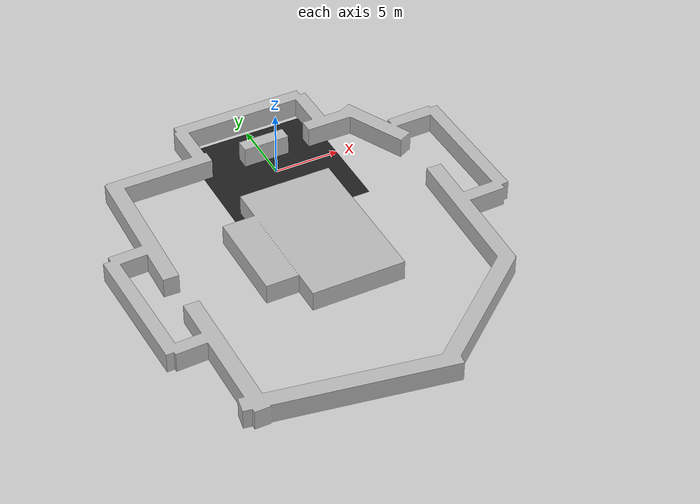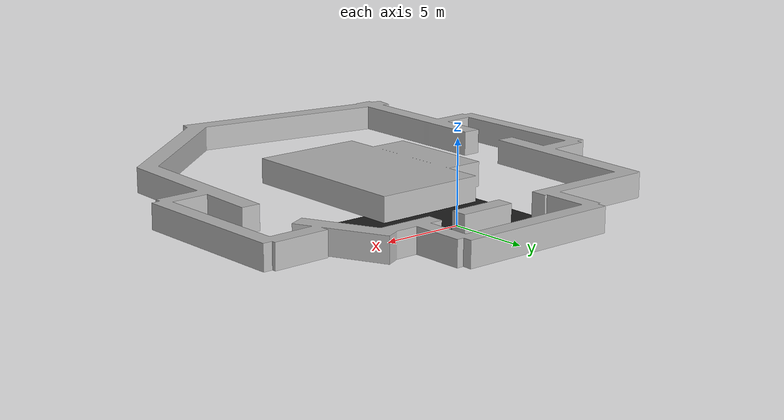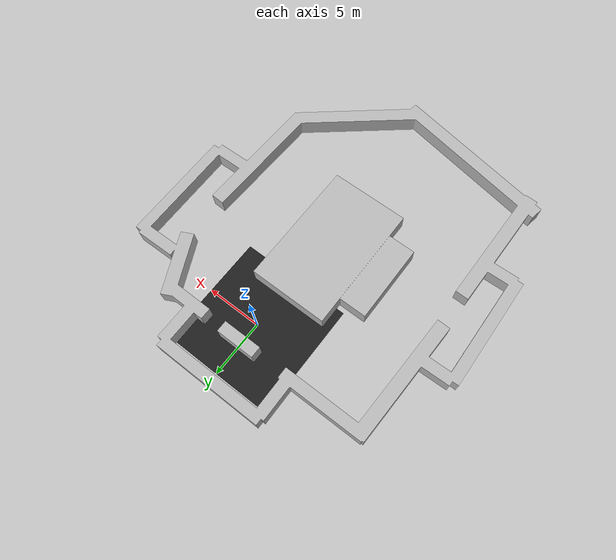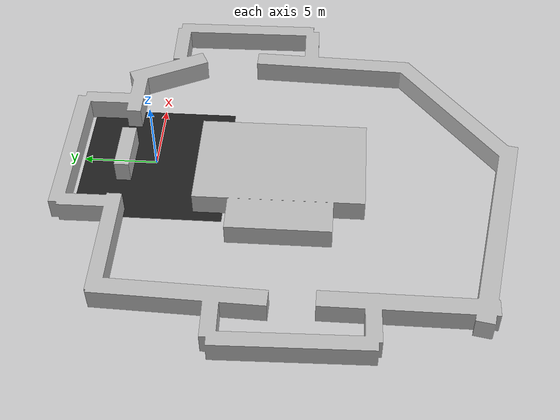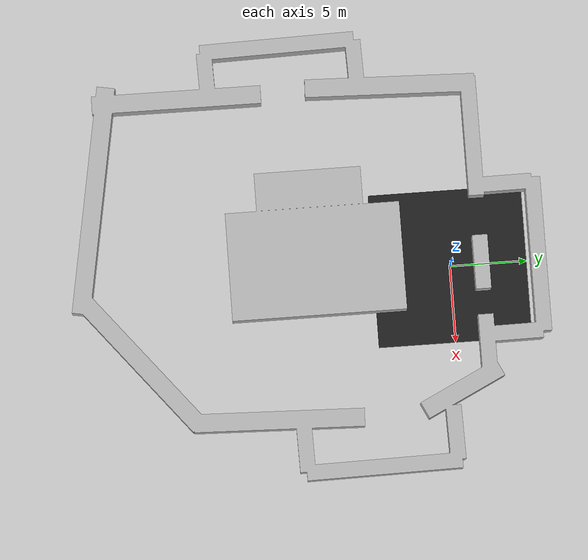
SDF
<sdf version="1.6">
 <world name="default">
  <scene>
   <ambient>0 0 0 1</ambient>
   <shadows>0</shadows>
   <grid>0</grid>
   <background>0.7 0.7 0.7 1</background>
  </scene>
  <include><uri>model://test_map</uri><pose>0 0 0 0 0 -3.14</pose></include>
  <light name="sun" type="directional">
   <pose>0 0 10 0 -0 0</pose>
   <diffuse>0.8 0.8 0.8 1</diffuse>
   <specular>0.1 0.1 0.1 1</specular>
   <attenuation>
    <range>1000</range>
    <constant>0.9</constant>
    <linear>0.01</linear>
    <quadratic>0.001</quadratic>
   </attenuation>
   <direction>-0.5 0.5 -1</direction>
  </light>
  <model name="ground2">
   <pose>0 0 -0.1 0 -0 0</pose>
   <static>1</static>
   <link name="ground">
    <collision name="ground_coll"><geometry><box><size>8 8 0.01</size></box></geometry></collision>
    <visual name="ground_vis">
     <geometry><box><size>10 10 0.01</size></box></geometry>
     <material>
      <script><uri>file://media/materials/scripts/gazebo.material</uri><name>Gazebo/FlatBlack</name></script>
     </material>
    </visual>
   </link>
  </model>
  <physics type="ode">
   <max_step_size>0.01</max_step_size>
   <real_time_factor>1</real_time_factor>
   <real_time_update_rate>100</real_time_update_rate>
  </physics>
  <spherical_coordinates>
   <surface_model>EARTH_WGS84</surface_model>
   <latitude_deg>0</latitude_deg>
   <longitude_deg>0</longitude_deg>
   <elevation>0</elevation>
   <heading_deg>0</heading_deg>
  </spherical_coordinates>
  <light name="user_point_light_1" type="point">
   <pose>-1.648146 0.604519 1 0 -0 0</pose>
   <diffuse>0.5 0.5 0.5 1</diffuse>
   <specular>0.1 0.1 0.1 1</specular>
   <attenuation>
    <range>20</range>
    <constant>0.5</constant>
    <linear>0.01</linear>
    <quadratic>0.001</quadratic>
   </attenuation>
   <cast_shadows>0</cast_shadows>
   <direction>0 0 -1</direction>
  </light>
  <light name="user_point_light_2" type="point">
   <pose>1.63854 1.69565 1 0 -0 0</pose>
   <diffuse>0.5 0.5 0.5 1</diffuse>
   <specular>0.1 0.1 0.1 1</specular>
   <attenuation>
    <range>20</range>
    <constant>0.5</constant>
    <linear>0.01</linear>
    <quadratic>0.001</quadratic>
   </attenuation>
   <cast_shadows>0</cast_shadows>
   <direction>0 0 -1</direction>
  </light>
  <light name="user_point_light_3" type="point">
   <pose>0.42  -3.31 1 0 -0 0</pose>
   <diffuse>0.5 0.5 0.5 1</diffuse>
   <specular>0.1 0.1 0.1 1</specular>
   <attenuation>
    <range>20</range>
    <constant>0.5</constant>
    <linear>0.01</linear>
    <quadratic>0.001</quadratic>
   </attenuation>
   <cast_shadows>0</cast_shadows>
   <direction>0 0 -1</direction>
  </light>
 </world>
</sdf>

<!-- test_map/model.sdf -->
<sdf version="1.6">
  <model name="test_map">
    <static>true</static>
    <link name="link">
      <collision name="collision">
        <geometry>
          <mesh>
            <scale>0.5 0.5 0.5</scale>
            <uri>model://test_map/meshes/map.dae</uri>
          </mesh>
        </geometry>
      </collision>
      <visual name="visual">
        <geometry>
          <mesh>
            <scale>0.5 0.5 0.5</scale>
            <uri>model://test_map/meshes/map.dae</uri>
          </mesh>
        </geometry>
      </visual>
    </link>
  </model>
</sdf>
